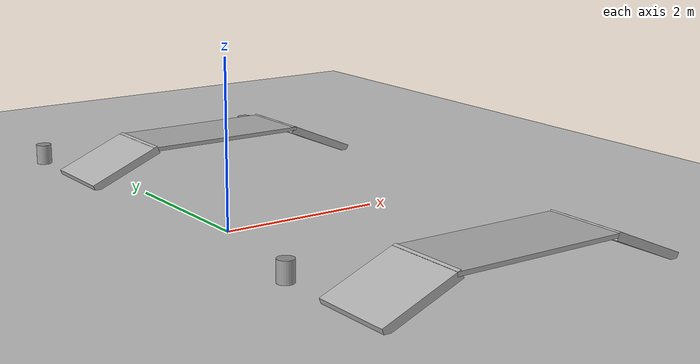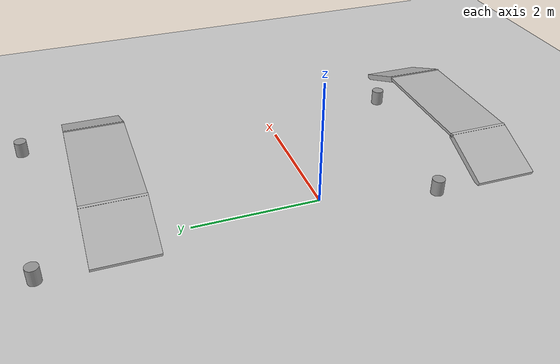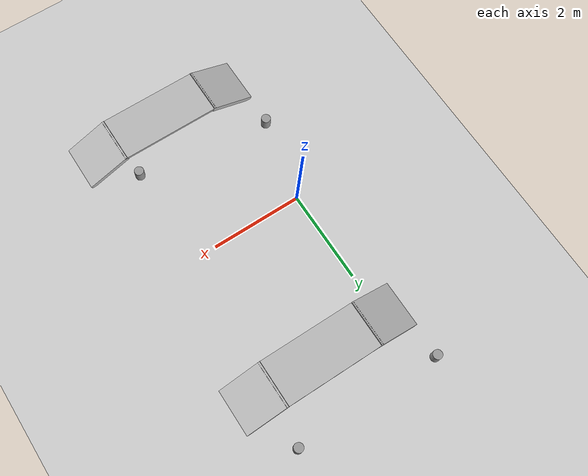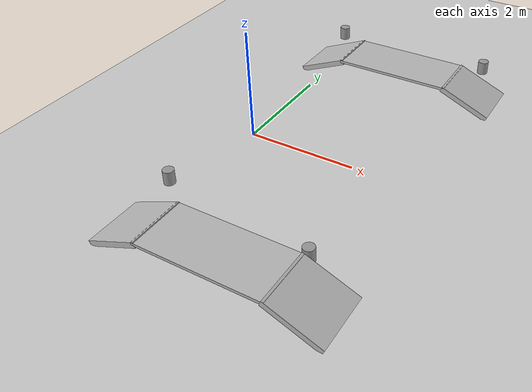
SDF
<sdf version="1.6">
 <world name="default">
  <light name="sun" type="directional">
   <pose>0 0 10 0 -0 0</pose>
   <diffuse>0.8 0.8 0.8 1</diffuse>
   <specular>0.2 0.2 0.2 1</specular>
   <attenuation>
    <range>1000</range>
    <constant>0.9</constant>
    <linear>0.01</linear>
    <quadratic>0.001</quadratic>
   </attenuation>
   <direction>-0.5 0.1 -0.9</direction>
  </light>
  <model name="ground_plane">
   <static>1</static>
   <link name="link">
    <collision name="collision">
     <geometry><plane><normal>0 0 1</normal><size>100 100</size></plane></geometry>
     <surface>
      <contact><collide_bitmask>65535</collide_bitmask></contact>
      <friction><ode><mu>100</mu><mu2>50</mu2></ode></friction>
     </surface>
    </collision>
    <visual name="visual">
     <cast_shadows>0</cast_shadows>
     <geometry><plane><normal>0 0 1</normal><size>100 100</size></plane></geometry>
     <material>
      <script><uri>file://media/materials/scripts/gazebo.material</uri><name>Gazebo/Grey</name></script>
     </material>
    </visual>
   </link>
  </model>
  <gravity>0 0 -9.81</gravity>
  <magnetic_field>6e-06 2.3e-05 -4.2e-05</magnetic_field>
  <atmosphere type="adiabatic"/>
  <physics name="default_physics" default="0" type="ode">
   <max_step_size>0.001</max_step_size>
   <real_time_factor>1</real_time_factor>
   <real_time_update_rate>1000</real_time_update_rate>
  </physics>
  <scene><ambient>0.4 0.4 0.4 1</ambient><background>0.7 0.7 0.7 1</background><shadows>1</shadows></scene>
  <audio><device>default</device></audio>
  <spherical_coordinates>
   <surface_model>EARTH_WGS84</surface_model>
   <latitude_deg>0</latitude_deg>
   <longitude_deg>0</longitude_deg>
   <elevation>0</elevation>
   <heading_deg>0</heading_deg>
  </spherical_coordinates>
  <model name="boxupR">
   <static>true</static>
   <pose>3 3 0.2 0 0.4 0</pose>
   <link name="link">
    <collision name="collision"><geometry><box><size>1 1 .1</size></box></geometry></collision>
    <visual name="visual"><geometry><box><size>1 1 .1</size></box></geometry></visual>
   </link>
  </model>
  <model name="boxflatR">
   <static>true</static>
   <pose>1.5 3 0.4 0 0 0</pose>
   <link name="link">
    <collision name="collision"><geometry><box><size>2.2 1 .05</size></box></geometry></collision>
    <visual name="visual"><geometry><box><size>2.2 1 .05</size></box></geometry></visual>
   </link>
  </model>
  <model name="boxdownR">
   <static>true</static>
   <pose>0 3 0.2 0 -0.4 0</pose>
   <link name="link">
    <collision name="collision"><geometry><box><size>1 1 .1</size></box></geometry></collision>
    <visual name="visual"><geometry><box><size>1 1 .1</size></box></geometry></visual>
   </link>
  </model>
  <model name="boxupL">
   <static>true</static>
   <pose>3 -3 0.2 0 0.4 0</pose>
   <link name="link">
    <collision name="collision"><geometry><box><size>1 1 .1</size></box></geometry></collision>
    <visual name="visual"><geometry><box><size>1 1 .1</size></box></geometry></visual>
   </link>
  </model>
  <model name="boxflatL">
   <static>true</static>
   <pose>1.5 -3 0.4 0 0 0</pose>
   <link name="link">
    <collision name="collision"><geometry><box><size>2.2 1 .05</size></box></geometry></collision>
    <visual name="visual"><geometry><box><size>2.2 1 .05</size></box></geometry></visual>
   </link>
  </model>
  <model name="boxdownL">
   <static>true</static>
   <pose>0 -3 0.2 0 -0.4 0</pose>
   <link name="link">
    <collision name="collision"><geometry><box><size>1 1 .1</size></box></geometry></collision>
    <visual name="visual"><geometry><box><size>1 1 .1</size></box></geometry></visual>
   </link>
  </model>
  <model name="uwb_anchor0">
   <static>1</static>
   <pose>-0.40 +4.20 0 0 -0 0</pose>
   <link name="link">
    <inertial>
     <mass>1</mass>
     <inertia><ixx>0.145833</ixx><ixy>0</ixy><ixz>0</ixz><iyy>0.145833</iyy><iyz>0</iyz><izz>0.125</izz></inertia>
    </inertial>
    <visual name="visual">
     <geometry><cylinder><radius>0.1</radius><length>0.5</length></cylinder></geometry>
     <material>
      <script><name>Gazebo/Grey</name><uri>file://media/materials/scripts/gazebo.material</uri></script>
     </material>
    </visual>
   </link>
  </model>
  <model name="uwb_anchor1">
   <static>1</static>
   <pose>-0.40 -1.80 0 0 -0 0</pose>
   <link name="link">
    <inertial>
     <mass>1</mass>
     <inertia><ixx>0.145833</ixx><ixy>0</ixy><ixz>0</ixz><iyy>0.145833</iyy><iyz>0</iyz><izz>0.125</izz></inertia>
    </inertial>
    <visual name="visual">
     <geometry><cylinder><radius>0.1</radius><length>0.5</length></cylinder></geometry>
     <material>
      <script><name>Gazebo/Grey</name><uri>file://media/materials/scripts/gazebo.material</uri></script>
     </material>
    </visual>
   </link>
  </model>
  <model name="uwb_anchor2">
   <static>1</static>
   <pose>+2.48 -2.20 0 0 -0 0</pose>
   <link name="link">
    <inertial>
     <mass>1</mass>
     <inertia><ixx>0.145833</ixx><ixy>0</ixy><ixz>0</ixz><iyy>0.145833</iyy><iyz>0</iyz><izz>0.125</izz></inertia>
    </inertial>
    <visual name="visual">
     <geometry><cylinder><radius>0.1</radius><length>0.5</length></cylinder></geometry>
     <material>
      <script><name>Gazebo/Grey</name><uri>file://media/materials/scripts/gazebo.material</uri></script>
     </material>
    </visual>
   </link>
  </model>
  <model name="uwb_anchor3">
   <static>1</static>
   <pose>+2.80 +4.20 0 0 -0 0</pose>
   <link name="link">
    <inertial>
     <mass>1</mass>
     <inertia><ixx>0.145833</ixx><ixy>0</ixy><ixz>0</ixz><iyy>0.145833</iyy><iyz>0</iyz><izz>0.125</izz></inertia>
    </inertial>
    <visual name="visual">
     <geometry><cylinder><radius>0.1</radius><length>0.5</length></cylinder></geometry>
     <material>
      <script><name>Gazebo/Grey</name><uri>file://media/materials/scripts/gazebo.material</uri></script>
     </material>
    </visual>
   </link>
  </model>
 </world>
</sdf>
